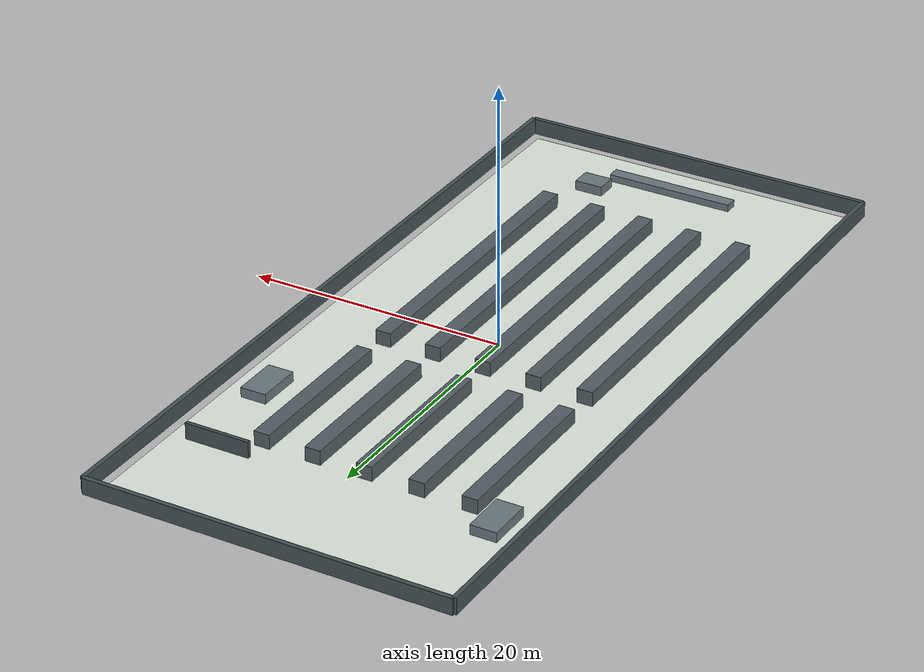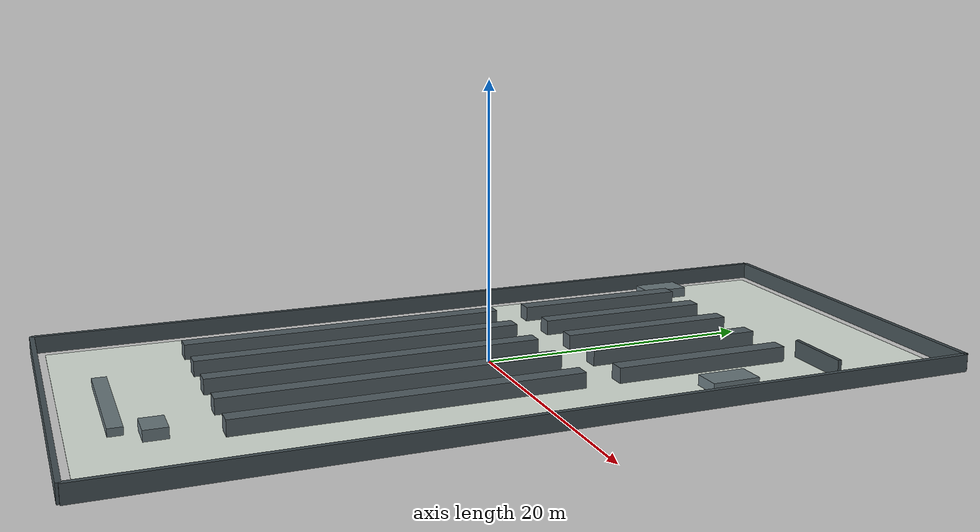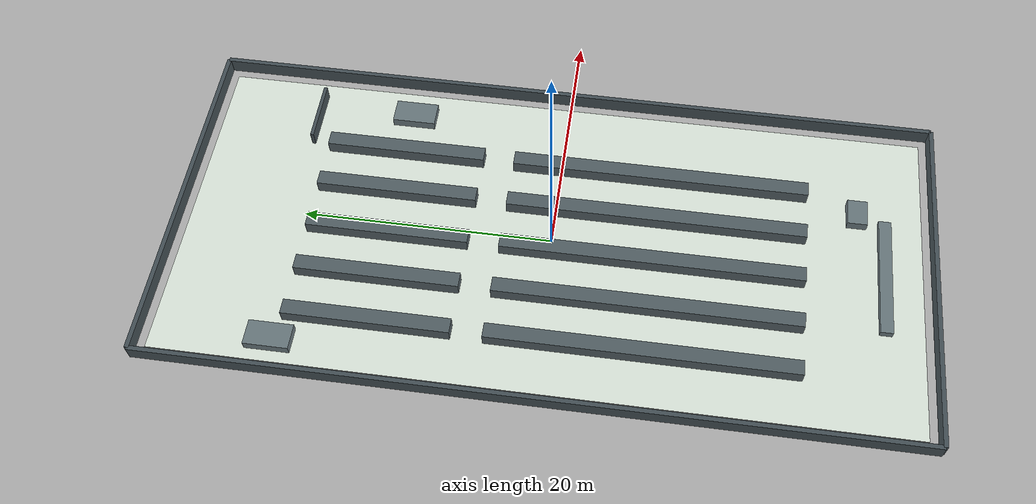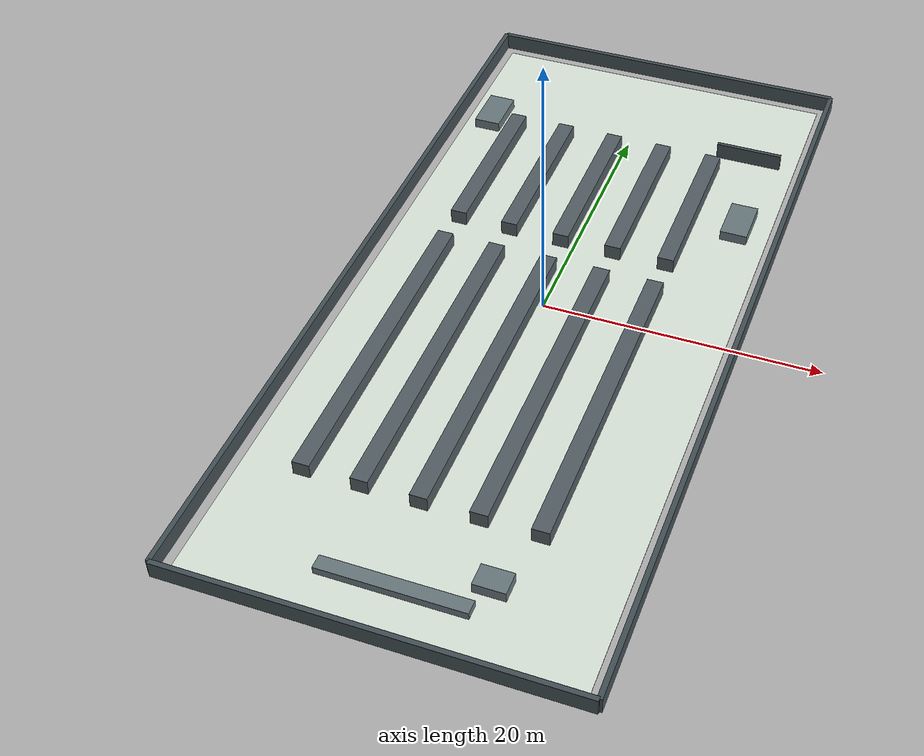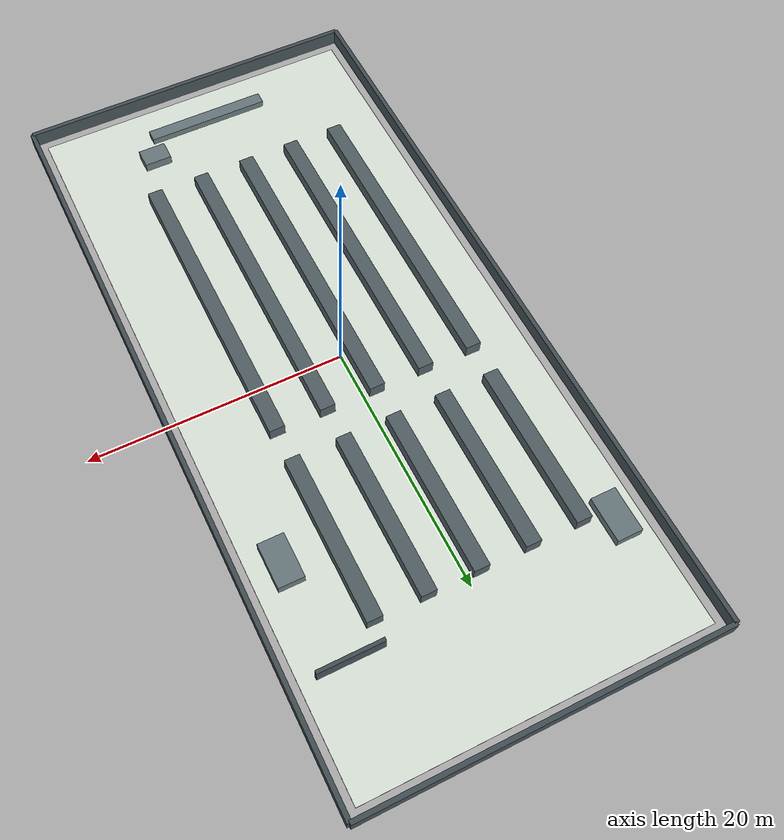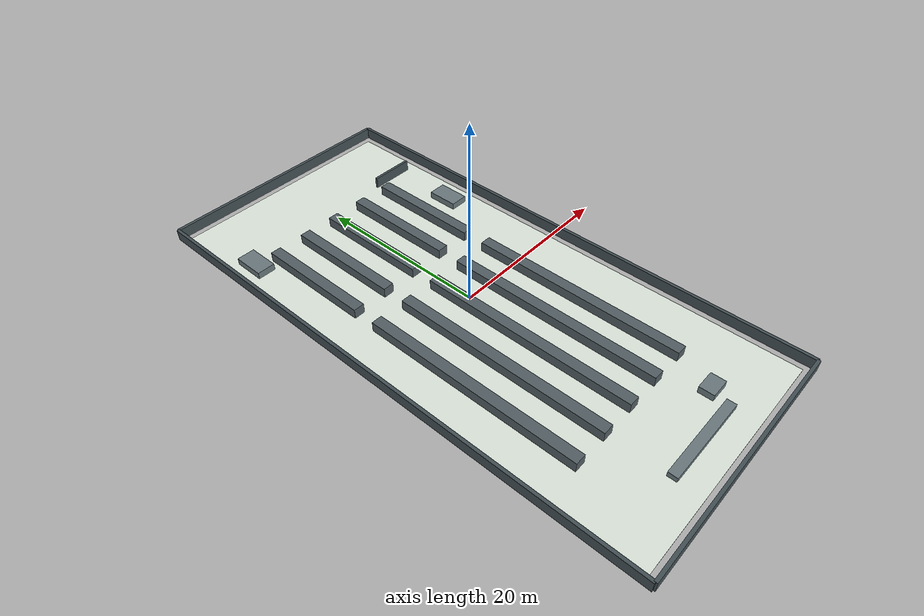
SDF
<?xml version="1.0" ?>
<sdf version="1.6">
  <world name="warehouse_aisles">
    <gravity>0 0 -9.8</gravity>
    <scene>
      <ambient>0.65 0.65 0.65 1</ambient>
      <background>0.78 0.84 0.88 1</background>
    </scene>
    <include>
      <uri>model://sun</uri>
    </include>
    <model name="warehouse_aisles_floor">
      <static>true</static>
      <pose>0.000 0.000 -0.025 0 0 0</pose>
      <link name="floor_link">
        <collision name="floor_collision">
          <geometry>
            <box><size>26.400 58.400 0.050</size></box>
          </geometry>
        </collision>
        <visual name="floor_visual">
          <geometry>
            <box><size>26.400 58.400 0.050</size></box>
          </geometry>
          <material><ambient>0.88 0.92 0.88 1</ambient><diffuse>0.88 0.92 0.88 1</diffuse></material>
        </visual>
      </link>
    </model>
    <model name="outer_north">
      <static>true</static>
      <pose>0.000 30.000 0.625 0 0 0</pose>
      <link name="outer_north_link">
        <collision name="outer_north_collision">
          <geometry>
            <box><size>28.000 0.350 1.250</size></box>
          </geometry>
        </collision>
        <visual name="outer_north_visual">
          <geometry>
            <box><size>28.000 0.350 1.250</size></box>
          </geometry>
          <material><ambient>0.27 0.32 0.34 1</ambient><diffuse>0.27 0.32 0.34 1</diffuse></material>
        </visual>
      </link>
    </model>
    <model name="outer_south">
      <static>true</static>
      <pose>0.000 -30.000 0.625 0 0 0</pose>
      <link name="outer_south_link">
        <collision name="outer_south_collision">
          <geometry>
            <box><size>28.000 0.350 1.250</size></box>
          </geometry>
        </collision>
        <visual name="outer_south_visual">
          <geometry>
            <box><size>28.000 0.350 1.250</size></box>
          </geometry>
          <material><ambient>0.27 0.32 0.34 1</ambient><diffuse>0.27 0.32 0.34 1</diffuse></material>
        </visual>
      </link>
    </model>
    <model name="outer_west">
      <static>true</static>
      <pose>-14.000 0.000 0.625 0 0 0</pose>
      <link name="outer_west_link">
        <collision name="outer_west_collision">
          <geometry>
            <box><size>0.350 60.000 1.250</size></box>
          </geometry>
        </collision>
        <visual name="outer_west_visual">
          <geometry>
            <box><size>0.350 60.000 1.250</size></box>
          </geometry>
          <material><ambient>0.27 0.32 0.34 1</ambient><diffuse>0.27 0.32 0.34 1</diffuse></material>
        </visual>
      </link>
    </model>
    <model name="outer_east">
      <static>true</static>
      <pose>14.000 0.000 0.625 0 0 0</pose>
      <link name="outer_east_link">
        <collision name="outer_east_collision">
          <geometry>
            <box><size>0.350 60.000 1.250</size></box>
          </geometry>
        </collision>
        <visual name="outer_east_visual">
          <geometry>
            <box><size>0.350 60.000 1.250</size></box>
          </geometry>
          <material><ambient>0.27 0.32 0.34 1</ambient><diffuse>0.27 0.32 0.34 1</diffuse></material>
        </visual>
      </link>
    </model>
    <model name="warehouse_shelf__9_a">
      <static>true</static>
      <pose>-9.000 -8.000 0.550 0 0 0</pose>
      <link name="warehouse_shelf__9_a_link">
        <collision name="warehouse_shelf__9_a_collision">
          <geometry>
            <box><size>1.200 24.000 1.100</size></box>
          </geometry>
        </collision>
        <visual name="warehouse_shelf__9_a_visual">
          <geometry>
            <box><size>1.200 24.000 1.100</size></box>
          </geometry>
          <material><ambient>0.33 0.38 0.40 1</ambient><diffuse>0.33 0.38 0.40 1</diffuse></material>
        </visual>
      </link>
    </model>
    <model name="warehouse_shelf__9_b">
      <static>true</static>
      <pose>-9.000 13.000 0.550 0 0 0</pose>
      <link name="warehouse_shelf__9_b_link">
        <collision name="warehouse_shelf__9_b_collision">
          <geometry>
            <box><size>1.200 13.000 1.100</size></box>
          </geometry>
        </collision>
        <visual name="warehouse_shelf__9_b_visual">
          <geometry>
            <box><size>1.200 13.000 1.100</size></box>
          </geometry>
          <material><ambient>0.33 0.38 0.40 1</ambient><diffuse>0.33 0.38 0.40 1</diffuse></material>
        </visual>
      </link>
    </model>
    <model name="warehouse_shelf__5_a">
      <static>true</static>
      <pose>-5.000 -8.000 0.550 0 0 0</pose>
      <link name="warehouse_shelf__5_a_link">
        <collision name="warehouse_shelf__5_a_collision">
          <geometry>
            <box><size>1.200 24.000 1.100</size></box>
          </geometry>
        </collision>
        <visual name="warehouse_shelf__5_a_visual">
          <geometry>
            <box><size>1.200 24.000 1.100</size></box>
          </geometry>
          <material><ambient>0.33 0.38 0.40 1</ambient><diffuse>0.33 0.38 0.40 1</diffuse></material>
        </visual>
      </link>
    </model>
    <model name="warehouse_shelf__5_b">
      <static>true</static>
      <pose>-5.000 13.000 0.550 0 0 0</pose>
      <link name="warehouse_shelf__5_b_link">
        <collision name="warehouse_shelf__5_b_collision">
          <geometry>
            <box><size>1.200 13.000 1.100</size></box>
          </geometry>
        </collision>
        <visual name="warehouse_shelf__5_b_visual">
          <geometry>
            <box><size>1.200 13.000 1.100</size></box>
          </geometry>
          <material><ambient>0.33 0.38 0.40 1</ambient><diffuse>0.33 0.38 0.40 1</diffuse></material>
        </visual>
      </link>
    </model>
    <model name="warehouse_shelf__1_a">
      <static>true</static>
      <pose>-1.000 -8.000 0.550 0 0 0</pose>
      <link name="warehouse_shelf__1_a_link">
        <collision name="warehouse_shelf__1_a_collision">
          <geometry>
            <box><size>1.200 24.000 1.100</size></box>
          </geometry>
        </collision>
        <visual name="warehouse_shelf__1_a_visual">
          <geometry>
            <box><size>1.200 24.000 1.100</size></box>
          </geometry>
          <material><ambient>0.33 0.38 0.40 1</ambient><diffuse>0.33 0.38 0.40 1</diffuse></material>
        </visual>
      </link>
    </model>
    <model name="warehouse_shelf__1_b">
      <static>true</static>
      <pose>-1.000 13.000 0.550 0 0 0</pose>
      <link name="warehouse_shelf__1_b_link">
        <collision name="warehouse_shelf__1_b_collision">
          <geometry>
            <box><size>1.200 13.000 1.100</size></box>
          </geometry>
        </collision>
        <visual name="warehouse_shelf__1_b_visual">
          <geometry>
            <box><size>1.200 13.000 1.100</size></box>
          </geometry>
          <material><ambient>0.33 0.38 0.40 1</ambient><diffuse>0.33 0.38 0.40 1</diffuse></material>
        </visual>
      </link>
    </model>
    <model name="warehouse_shelf_3_a">
      <static>true</static>
      <pose>3.000 -8.000 0.550 0 0 0</pose>
      <link name="warehouse_shelf_3_a_link">
        <collision name="warehouse_shelf_3_a_collision">
          <geometry>
            <box><size>1.200 24.000 1.100</size></box>
          </geometry>
        </collision>
        <visual name="warehouse_shelf_3_a_visual">
          <geometry>
            <box><size>1.200 24.000 1.100</size></box>
          </geometry>
          <material><ambient>0.33 0.38 0.40 1</ambient><diffuse>0.33 0.38 0.40 1</diffuse></material>
        </visual>
      </link>
    </model>
    <model name="warehouse_shelf_3_b">
      <static>true</static>
      <pose>3.000 13.000 0.550 0 0 0</pose>
      <link name="warehouse_shelf_3_b_link">
        <collision name="warehouse_shelf_3_b_collision">
          <geometry>
            <box><size>1.200 13.000 1.100</size></box>
          </geometry>
        </collision>
        <visual name="warehouse_shelf_3_b_visual">
          <geometry>
            <box><size>1.200 13.000 1.100</size></box>
          </geometry>
          <material><ambient>0.33 0.38 0.40 1</ambient><diffuse>0.33 0.38 0.40 1</diffuse></material>
        </visual>
      </link>
    </model>
    <model name="warehouse_shelf_7_a">
      <static>true</static>
      <pose>7.000 -8.000 0.550 0 0 0</pose>
      <link name="warehouse_shelf_7_a_link">
        <collision name="warehouse_shelf_7_a_collision">
          <geometry>
            <box><size>1.200 24.000 1.100</size></box>
          </geometry>
        </collision>
        <visual name="warehouse_shelf_7_a_visual">
          <geometry>
            <box><size>1.200 24.000 1.100</size></box>
          </geometry>
          <material><ambient>0.33 0.38 0.40 1</ambient><diffuse>0.33 0.38 0.40 1</diffuse></material>
        </visual>
      </link>
    </model>
    <model name="warehouse_shelf_7_b">
      <static>true</static>
      <pose>7.000 13.000 0.550 0 0 0</pose>
      <link name="warehouse_shelf_7_b_link">
        <collision name="warehouse_shelf_7_b_collision">
          <geometry>
            <box><size>1.200 13.000 1.100</size></box>
          </geometry>
        </collision>
        <visual name="warehouse_shelf_7_b_visual">
          <geometry>
            <box><size>1.200 13.000 1.100</size></box>
          </geometry>
          <material><ambient>0.33 0.38 0.40 1</ambient><diffuse>0.33 0.38 0.40 1</diffuse></material>
        </visual>
      </link>
    </model>
    <model name="warehouse_loading_counter">
      <static>true</static>
      <pose>0.000 -26.200 0.275 0 0 0</pose>
      <link name="warehouse_loading_counter_link">
        <collision name="warehouse_loading_counter_collision">
          <geometry>
            <box><size>10.000 1.000 0.550</size></box>
          </geometry>
        </collision>
        <visual name="warehouse_loading_counter_visual">
          <geometry>
            <box><size>10.000 1.000 0.550</size></box>
          </geometry>
          <material><ambient>0.42 0.48 0.50 1</ambient><diffuse>0.42 0.48 0.50 1</diffuse></material>
        </visual>
      </link>
    </model>
    <model name="warehouse_pallet_stack_a">
      <static>true</static>
      <pose>-11.300 20.000 0.375 0 0 0</pose>
      <link name="warehouse_pallet_stack_a_link">
        <collision name="warehouse_pallet_stack_a_collision">
          <geometry>
            <box><size>2.000 3.500 0.750</size></box>
          </geometry>
        </collision>
        <visual name="warehouse_pallet_stack_a_visual">
          <geometry>
            <box><size>2.000 3.500 0.750</size></box>
          </geometry>
          <material><ambient>0.42 0.48 0.50 1</ambient><diffuse>0.42 0.48 0.50 1</diffuse></material>
        </visual>
      </link>
    </model>
    <model name="warehouse_pallet_stack_b">
      <static>true</static>
      <pose>10.800 13.000 0.375 0 0 0</pose>
      <link name="warehouse_pallet_stack_b_link">
        <collision name="warehouse_pallet_stack_b_collision">
          <geometry>
            <box><size>2.000 3.500 0.750</size></box>
          </geometry>
        </collision>
        <visual name="warehouse_pallet_stack_b_visual">
          <geometry>
            <box><size>2.000 3.500 0.750</size></box>
          </geometry>
          <material><ambient>0.42 0.48 0.50 1</ambient><diffuse>0.42 0.48 0.50 1</diffuse></material>
        </visual>
      </link>
    </model>
    <model name="warehouse_forklift_body">
      <static>true</static>
      <pose>5.500 -24.000 0.375 0 0 0</pose>
      <link name="warehouse_forklift_body_link">
        <collision name="warehouse_forklift_body_collision">
          <geometry>
            <box><size>2.200 1.600 0.750</size></box>
          </geometry>
        </collision>
        <visual name="warehouse_forklift_body_visual">
          <geometry>
            <box><size>2.200 1.600 0.750</size></box>
          </geometry>
          <material><ambient>0.42 0.48 0.50 1</ambient><diffuse>0.42 0.48 0.50 1</diffuse></material>
        </visual>
      </link>
    </model>
    <model name="warehouse_hazmat_cage_wall">
      <static>true</static>
      <pose>9.500 21.000 0.625 0 0 0</pose>
      <link name="warehouse_hazmat_cage_wall_link">
        <collision name="warehouse_hazmat_cage_wall_collision">
          <geometry>
            <box><size>5.000 0.280 1.250</size></box>
          </geometry>
        </collision>
        <visual name="warehouse_hazmat_cage_wall_visual">
          <geometry>
            <box><size>5.000 0.280 1.250</size></box>
          </geometry>
          <material><ambient>0.27 0.32 0.34 1</ambient><diffuse>0.27 0.32 0.34 1</diffuse></material>
        </visual>
      </link>
    </model>
  </world>
</sdf>
